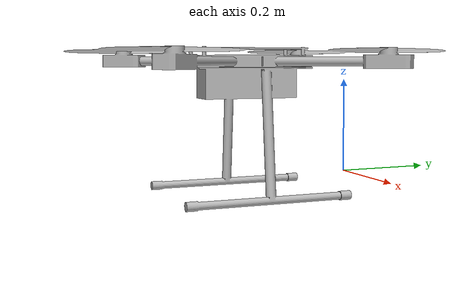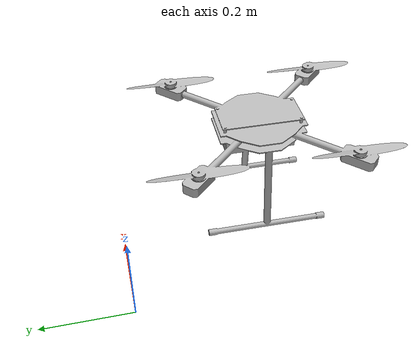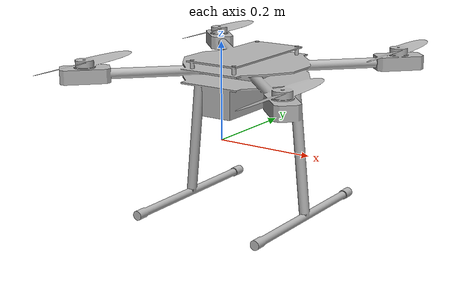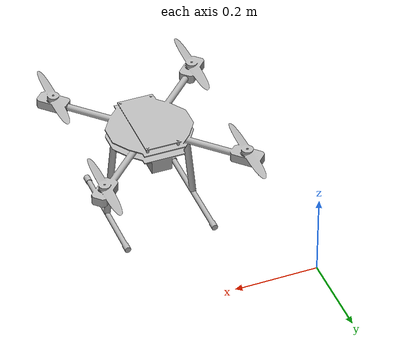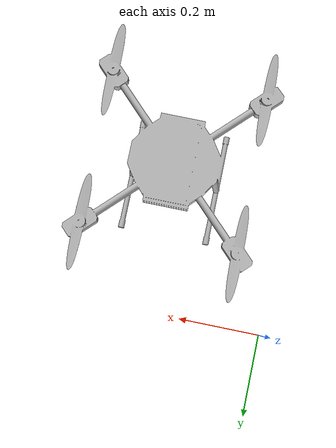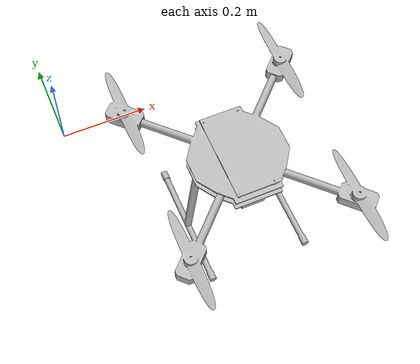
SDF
<?xml version='1.0'?>
<sdf version="1.6">
	<model name="drone_new">
      <static>true</static>
      <link name="body">
        <collision name = 'collision'>
          <geometry>
            <mesh>
              <uri>model://drone_new/drone_new.dae</uri>
              <scale>.3048 .3048 .3048</scale>
            </mesh>
          </geometry>
        </collision>
        <visual name="visual">
          <geometry>
            <mesh>
            	<uri>model://drone_new/drone_new.dae</uri>
            	<scale>.3048 .3048 .3048</scale>
            </mesh>
          </geometry>
        </visual>
      </link>
    </model>

</sdf>
